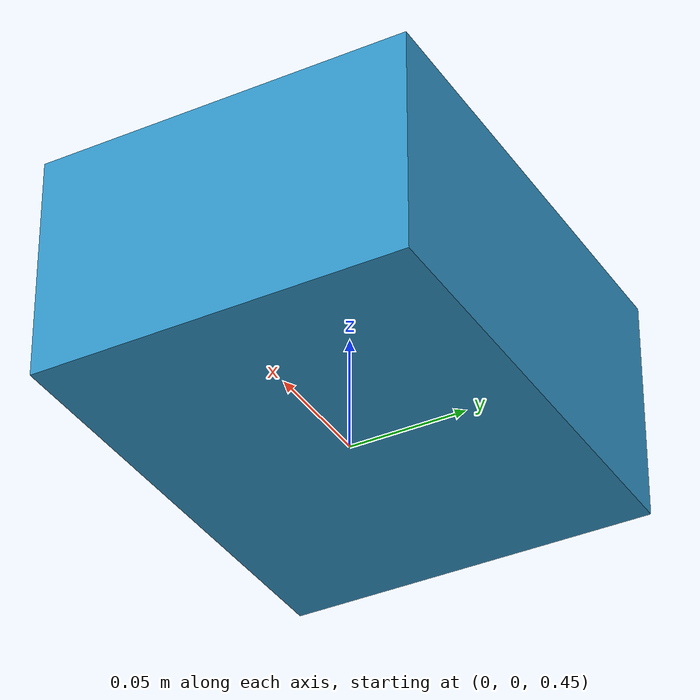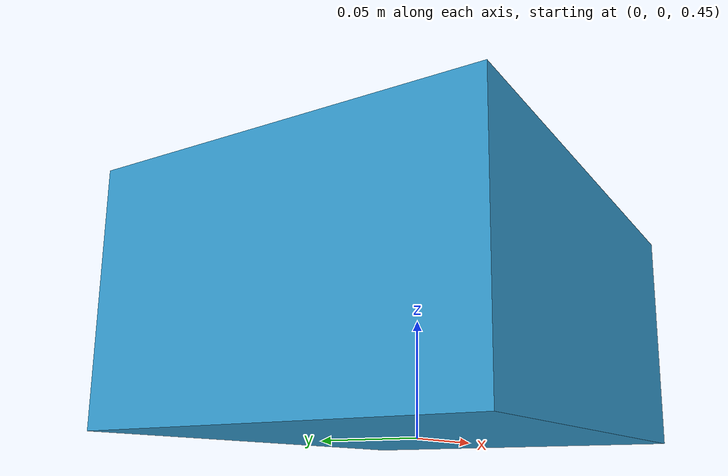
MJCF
<mujoco model="template_scene">
  <option timestep="0.001" gravity="0 0 -9.81"/>

  <visual>
    <global azimuth="120" elevation="-20"/>
  </visual>

  <asset>
    <texture name="grid" type="2d" builtin="checker" width="512" height="512"
             rgb1=".1 .2 .3" rgb2=".2 .3 .4"/>
    <material name="grid" texture="grid" texrepeat="1 1" texuniform="true"
              reflectance=".2"/>
  </asset>

  <worldbody>
    <light pos="0 0 3"/>
    <geom name="floor" type="plane" size="5 5 .1" material="grid"/>
    <body name="template_base" pos="0 0 0.5">
      <freejoint name="floating_base"/>
      <geom name="template_body" type="box" size="0.1 0.08 0.05" rgba="0.2 0.6 0.8 1"/>
    </body>
  </worldbody>
</mujoco>
